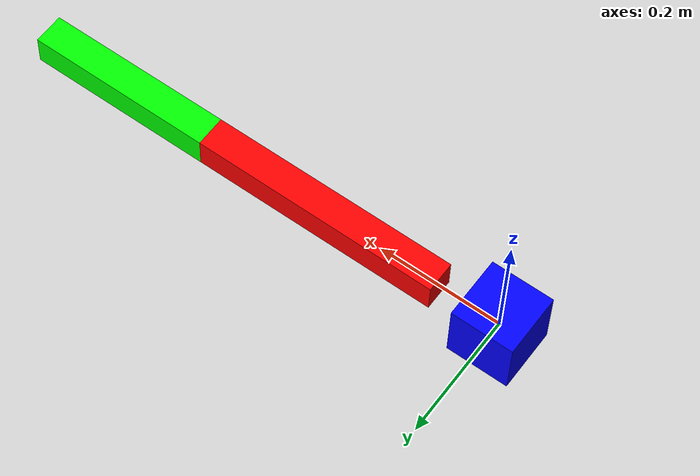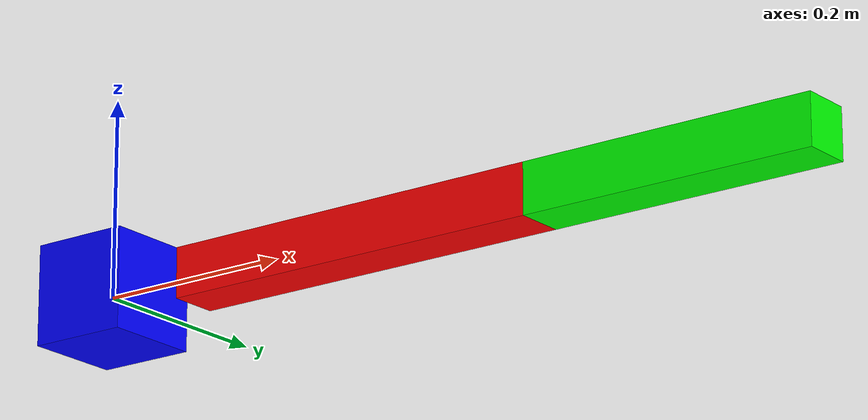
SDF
<?xml version="1.0" ?>
<sdf version="1.6">
<model name="two_links">
  <static>false</static>

  <link name="base_link">
    <pose>0 0 0 0 0 0</pose>
    <inertial>
      <mass>1.0</mass>
      <inertia>
        <ixx>0.01</ixx>
        <iyy>0.01</iyy>
        <izz>0.01</izz>
      </inertia>
    </inertial>
    <collision name="collision">
      <geometry>
        <box><size>0.1 0.1 0.1</size></box>
      </geometry>
    </collision>
    <visual name="visual">
      <geometry>
        <box><size>0.1 0.1 0.1</size></box>
      </geometry>
      <material>
        <ambient>0 0 1 1</ambient>
        <diffuse>0 0 1 1</diffuse>
      </material>
    </visual>
  </link>

<link name="link1">
  <pose>0.1 0 0 0 0 0</pose>
  <inertial>
    <mass>0.5</mass>
    <inertia>
      <ixx>0.01</ixx>
      <iyy>0.01</iyy>
      <izz>0.01</izz>
    </inertia>
  </inertial>
  <collision name="collision">
    <geometry>
      <box><size>0.4 0.05 0.05</size></box>
    </geometry>
    <pose>0.2 0 0 0 0 0</pose>
  </collision>
  <visual name="visual">
    <geometry>
      <box><size>0.4 0.05 0.05</size></box>
    </geometry>
    <pose>0.2 0 0 0 0 0</pose>
    <material>
       <ambient>1 0 0 1</ambient>
       <diffuse>1 0 0 1</diffuse>
    </material>
  </visual>
</link>

<link name="link2">
  <pose>0.5 0 0 0 0 0</pose>
  <inertial>
    <mass>0.3</mass>
    <inertia>
      <ixx>0.01</ixx>
      <iyy>0.01</iyy>
      <izz>0.01</izz>
    </inertia>
  </inertial>
  <collision name="collision">
    <geometry>
      <box><size>0.3 0.05 0.05</size></box>
    </geometry>
    <pose>0.15 0 0 0 0 0</pose>
  </collision>
  <visual name="visual">
    <geometry>
      <box><size>0.3 0.05 0.05</size></box>
    </geometry>
    <pose>0.15 0 0 0 0 0</pose>
    <material>
       <ambient>0 1 0 1</ambient>
       <diffuse>0 1 0 1</diffuse>
    </material>
  </visual>
</link>

<joint name="joint1" type="revolute">
  <parent>base_link</parent>
  <child>link1</child>
  <pose>0 0 0.05 0 0 0</pose>
  <axis>
    <xyz>0 0 1</xyz>
    <limit>
      <lower>-1.57</lower>
      <upper>1.57</upper>
      <effort>10</effort>
      <velocity>1.0</velocity>
    </limit>
  </axis>
</joint>

<joint name="joint2" type="revolute">
  <parent>link1</parent>
  <child>link2</child>
  <pose>0.4 0 0 0 0 0</pose>
  <axis>
    <xyz>0 0 1</xyz>
    <limit>
      <lower>-1.57</lower>
      <upper>1.57</upper>
      <effort>10</effort>
      <velocity>1.0</velocity>
    </limit>
  </axis>
</joint>
</model>
</sdf>
